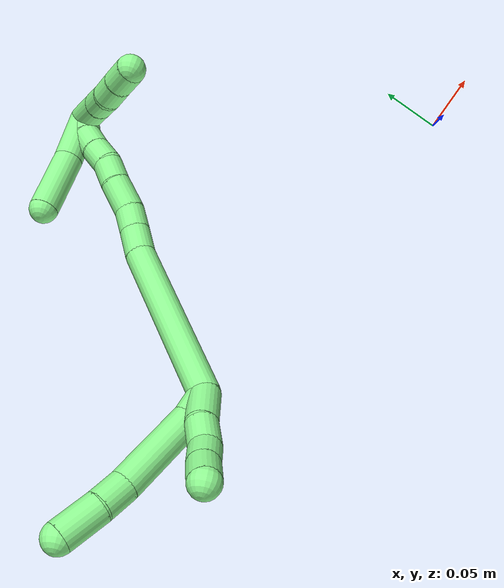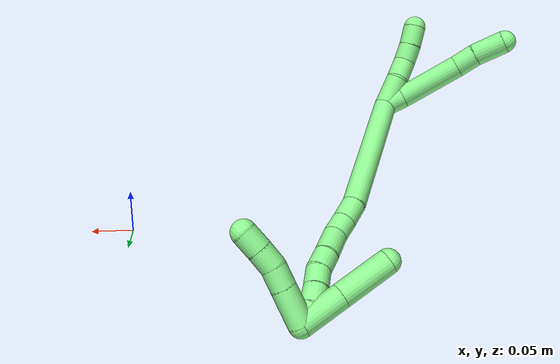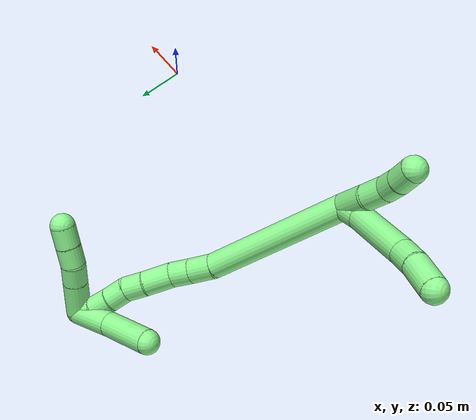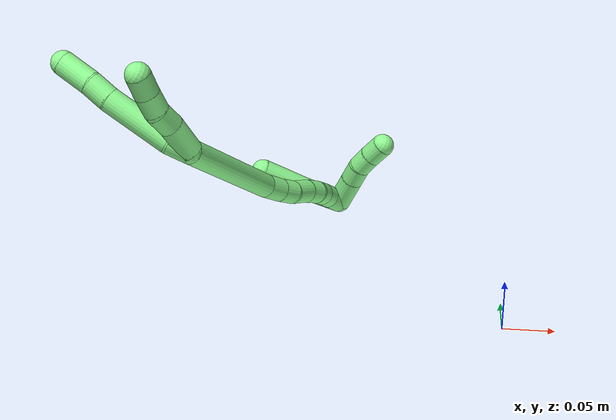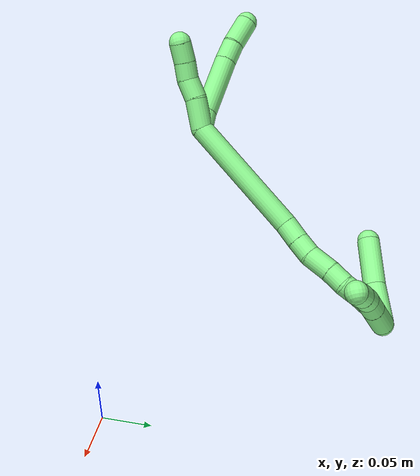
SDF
<sdf version="1.7">
 <world name="default">
  <model name="13">
   <static>0</static>
   <link name="13">
    <collision name="collision-cylinder-e_1_2_8">
     <pose>-0.000309 0.003994 0.010503 -0.363366 -0.027468 0.005046</pose>
     <geometry><cylinder><radius>0.0125</radius><length>0.022482</length></cylinder></geometry>
     <surface>
      <friction><ode><mu>1.16</mu><mu2>1.16</mu2><slip1>0</slip1><slip2>0</slip2></ode></friction>
      <contact><ode><kp>1e+06</kp><kd>1</kd><max_vel>0</max_vel><min_depth>0.001</min_depth></ode></contact>
     </surface>
    </collision>
    <visual name="visual-cylinder-e_1_2_8">
     <pose>-0.000309 0.003994 0.010503 -0.363366 -0.027468 0.005046</pose>
     <geometry><cylinder><radius>0.0125</radius><length>0.022482</length></cylinder></geometry>
     <material><ambient>0.564706 0.984314 0.572549 1</ambient></material>
    </visual>
    <collision name="collision-cylinder-e_2_8_9">
     <pose>0.00483 0.023265 0.051994 -0.458042 0.156395 -0.036528</pose>
     <geometry><cylinder><radius>0.0125</radius><length>0.069952</length></cylinder></geometry>
     <surface>
      <friction><ode><mu>1.16</mu><mu2>1.16</mu2><slip1>0</slip1><slip2>0</slip2></ode></friction>
      <contact><ode><kp>1e+06</kp><kd>1</kd><max_vel>0</max_vel><min_depth>0.001</min_depth></ode></contact>
     </surface>
    </collision>
    <visual name="visual-cylinder-e_2_8_9">
     <pose>0.00483 0.023265 0.051994 -0.458042 0.156395 -0.036528</pose>
     <geometry><cylinder><radius>0.0125</radius><length>0.069952</length></cylinder></geometry>
     <material><ambient>0.564706 0.984314 0.572549 1</ambient></material>
    </visual>
    <collision name="collision-cylinder-e_3_9_10">
     <pose>0.013359 0.044051 0.092952 -0.504781 0.264133 -0.068489</pose>
     <geometry><cylinder><radius>0.0125</radius><length>0.023599</length></cylinder></geometry>
     <surface>
      <friction><ode><mu>1.16</mu><mu2>1.16</mu2><slip1>0</slip1><slip2>0</slip2></ode></friction>
      <contact><ode><kp>1e+06</kp><kd>1</kd><max_vel>0</max_vel><min_depth>0.001</min_depth></ode></contact>
     </surface>
    </collision>
    <visual name="visual-cylinder-e_3_9_10">
     <pose>0.013359 0.044051 0.092952 -0.504781 0.264133 -0.068489</pose>
     <geometry><cylinder><radius>0.0125</radius><length>0.023599</length></cylinder></geometry>
     <material><ambient>0.564706 0.984314 0.572549 1</ambient></material>
    </visual>
    <collision name="collision-cylinder-e_4_10_6">
     <pose>0.019402 0.059315 0.116504 -0.622878 0.175358 -0.05658</pose>
     <geometry><cylinder><radius>0.0125</radius><length>0.033967</length></cylinder></geometry>
     <surface>
      <friction><ode><mu>1.16</mu><mu2>1.16</mu2><slip1>0</slip1><slip2>0</slip2></ode></friction>
      <contact><ode><kp>1e+06</kp><kd>1</kd><max_vel>0</max_vel><min_depth>0.001</min_depth></ode></contact>
     </surface>
    </collision>
    <visual name="visual-cylinder-e_4_10_6">
     <pose>0.019402 0.059315 0.116504 -0.622878 0.175358 -0.05658</pose>
     <geometry><cylinder><radius>0.0125</radius><length>0.033967</length></cylinder></geometry>
     <material><ambient>0.564706 0.984314 0.572549 1</ambient></material>
    </visual>
    <collision name="collision-cylinder-e_1_2_11">
     <pose>0.006453 -0.003257 0.015604 0.205772 0.384635 0.040205</pose>
     <geometry><cylinder><radius>0.0125</radius><length>0.034394</length></cylinder></geometry>
     <surface>
      <friction><ode><mu>1.16</mu><mu2>1.16</mu2><slip1>0</slip1><slip2>0</slip2></ode></friction>
      <contact><ode><kp>1e+06</kp><kd>1</kd><max_vel>0</max_vel><min_depth>0.001</min_depth></ode></contact>
     </surface>
    </collision>
    <visual name="visual-cylinder-e_1_2_11">
     <pose>0.006453 -0.003257 0.015604 0.205772 0.384635 0.040205</pose>
     <geometry><cylinder><radius>0.0125</radius><length>0.034394</length></cylinder></geometry>
     <material><ambient>0.564706 0.984314 0.572549 1</ambient></material>
    </visual>
    <collision name="collision-cylinder-e_2_11_12">
     <pose>0.015439 -0.010497 0.041886 0.357022 0.218737 0.03962</pose>
     <geometry><cylinder><radius>0.0125</radius><length>0.023348</length></cylinder></geometry>
     <surface>
      <friction><ode><mu>1.16</mu><mu2>1.16</mu2><slip1>0</slip1><slip2>0</slip2></ode></friction>
      <contact><ode><kp>1e+06</kp><kd>1</kd><max_vel>0</max_vel><min_depth>0.001</min_depth></ode></contact>
     </surface>
    </collision>
    <visual name="visual-cylinder-e_2_11_12">
     <pose>0.015439 -0.010497 0.041886 0.357022 0.218737 0.03962</pose>
     <geometry><cylinder><radius>0.0125</radius><length>0.023348</length></cylinder></geometry>
     <material><ambient>0.564706 0.984314 0.572549 1</ambient></material>
    </visual>
    <collision name="collision-cylinder-e_3_12_13">
     <pose>0.022932 -0.016531 0.061104 0.235788 0.51401 0.062238</pose>
     <geometry><cylinder><radius>0.0125</radius><length>0.020175</length></cylinder></geometry>
     <surface>
      <friction><ode><mu>1.16</mu><mu2>1.16</mu2><slip1>0</slip1><slip2>0</slip2></ode></friction>
      <contact><ode><kp>1e+06</kp><kd>1</kd><max_vel>0</max_vel><min_depth>0.001</min_depth></ode></contact>
     </surface>
    </collision>
    <visual name="visual-cylinder-e_3_12_13">
     <pose>0.022932 -0.016531 0.061104 0.235788 0.51401 0.062238</pose>
     <geometry><cylinder><radius>0.0125</radius><length>0.020175</length></cylinder></geometry>
     <material><ambient>0.564706 0.984314 0.572549 1</ambient></material>
    </visual>
    <collision name="collision-cylinder-e_4_13_5">
     <pose>0.033505 -0.021808 0.07859 0.346036 0.53331 0.095406</pose>
     <geometry><cylinder><radius>0.0125</radius><length>0.022083</length></cylinder></geometry>
     <surface>
      <friction><ode><mu>1.16</mu><mu2>1.16</mu2><slip1>0</slip1><slip2>0</slip2></ode></friction>
      <contact><ode><kp>1e+06</kp><kd>1</kd><max_vel>0</max_vel><min_depth>0.001</min_depth></ode></contact>
     </surface>
    </collision>
    <visual name="visual-cylinder-e_4_13_5">
     <pose>0.033505 -0.021808 0.07859 0.346036 0.53331 0.095406</pose>
     <geometry><cylinder><radius>0.0125</radius><length>0.022083</length></cylinder></geometry>
     <material><ambient>0.564706 0.984314 0.572549 1</ambient></material>
    </visual>
    <collision name="collision-cylinder-e_1_2_14">
     <pose>0.003231 0.039331 -0.060508 -2.56521 0.044743 -0.150671</pose>
     <geometry><cylinder><radius>0.0125</radius><length>0.144479</length></cylinder></geometry>
     <surface>
      <friction><ode><mu>1.16</mu><mu2>1.16</mu2><slip1>0</slip1><slip2>0</slip2></ode></friction>
      <contact><ode><kp>1e+06</kp><kd>1</kd><max_vel>0</max_vel><min_depth>0.001</min_depth></ode></contact>
     </surface>
    </collision>
    <visual name="visual-cylinder-e_1_2_14">
     <pose>0.003231 0.039331 -0.060508 -2.56521 0.044743 -0.150671</pose>
     <geometry><cylinder><radius>0.0125</radius><length>0.144479</length></cylinder></geometry>
     <material><ambient>0.564706 0.984314 0.572549 1</ambient></material>
    </visual>
    <collision name="collision-cylinder-e_2_14_15">
     <pose>0.008166 0.083503 -0.13193 -2.72407 0.141724 -0.646605</pose>
     <geometry><cylinder><radius>0.0125</radius><length>0.024123</length></cylinder></geometry>
     <surface>
      <friction><ode><mu>1.16</mu><mu2>1.16</mu2><slip1>0</slip1><slip2>0</slip2></ode></friction>
      <contact><ode><kp>1e+06</kp><kd>1</kd><max_vel>0</max_vel><min_depth>0.001</min_depth></ode></contact>
     </surface>
    </collision>
    <visual name="visual-cylinder-e_2_14_15">
     <pose>0.008166 0.083503 -0.13193 -2.72407 0.141724 -0.646605</pose>
     <geometry><cylinder><radius>0.0125</radius><length>0.024123</length></cylinder></geometry>
     <material><ambient>0.564706 0.984314 0.572549 1</ambient></material>
    </visual>
    <collision name="collision-cylinder-e_3_15_16">
     <pose>0.012026 0.092598 -0.152226 -2.71596 0.206345 -0.893671</pose>
     <geometry><cylinder><radius>0.0125</radius><length>0.021047</length></cylinder></geometry>
     <surface>
      <friction><ode><mu>1.16</mu><mu2>1.16</mu2><slip1>0</slip1><slip2>0</slip2></ode></friction>
      <contact><ode><kp>1e+06</kp><kd>1</kd><max_vel>0</max_vel><min_depth>0.001</min_depth></ode></contact>
     </surface>
    </collision>
    <visual name="visual-cylinder-e_3_15_16">
     <pose>0.012026 0.092598 -0.152226 -2.71596 0.206345 -0.893671</pose>
     <geometry><cylinder><radius>0.0125</radius><length>0.021047</length></cylinder></geometry>
     <material><ambient>0.564706 0.984314 0.572549 1</ambient></material>
    </visual>
    <collision name="collision-cylinder-e_4_16_17">
     <pose>0.018625 0.105058 -0.172802 -2.50897 0.309773 -0.890226</pose>
     <geometry><cylinder><radius>0.0125</radius><length>0.029149</length></cylinder></geometry>
     <surface>
      <friction><ode><mu>1.16</mu><mu2>1.16</mu2><slip1>0</slip1><slip2>0</slip2></ode></friction>
      <contact><ode><kp>1e+06</kp><kd>1</kd><max_vel>0</max_vel><min_depth>0.001</min_depth></ode></contact>
     </surface>
    </collision>
    <visual name="visual-cylinder-e_4_16_17">
     <pose>0.018625 0.105058 -0.172802 -2.50897 0.309773 -0.890226</pose>
     <geometry><cylinder><radius>0.0125</radius><length>0.029149</length></cylinder></geometry>
     <material><ambient>0.564706 0.984314 0.572549 1</ambient></material>
    </visual>
    <collision name="collision-cylinder-e_5_17_18">
     <pose>0.025547 0.118501 -0.192666 -2.59835 0.240088 -0.817449</pose>
     <geometry><cylinder><radius>0.0125</radius><length>0.020855</length></cylinder></geometry>
     <surface>
      <friction><ode><mu>1.16</mu><mu2>1.16</mu2><slip1>0</slip1><slip2>0</slip2></ode></friction>
      <contact><ode><kp>1e+06</kp><kd>1</kd><max_vel>0</max_vel><min_depth>0.001</min_depth></ode></contact>
     </surface>
    </collision>
    <visual name="visual-cylinder-e_5_17_18">
     <pose>0.025547 0.118501 -0.192666 -2.59835 0.240088 -0.817449</pose>
     <geometry><cylinder><radius>0.0125</radius><length>0.020855</length></cylinder></geometry>
     <material><ambient>0.564706 0.984314 0.572549 1</ambient></material>
    </visual>
    <collision name="collision-cylinder-e_6_18_19">
     <pose>0.02901 0.130777 -0.208479 -2.36334 0.097691 -0.237321</pose>
     <geometry><cylinder><radius>0.0125</radius><length>0.020154</length></cylinder></geometry>
     <surface>
      <friction><ode><mu>1.16</mu><mu2>1.16</mu2><slip1>0</slip1><slip2>0</slip2></ode></friction>
      <contact><ode><kp>1e+06</kp><kd>1</kd><max_vel>0</max_vel><min_depth>0.001</min_depth></ode></contact>
     </surface>
    </collision>
    <visual name="visual-cylinder-e_6_18_19">
     <pose>0.02901 0.130777 -0.208479 -2.36334 0.097691 -0.237321</pose>
     <geometry><cylinder><radius>0.0125</radius><length>0.020154</length></cylinder></geometry>
     <material><ambient>0.564706 0.984314 0.572549 1</ambient></material>
    </visual>
    <collision name="collision-cylinder-e_7_19_20">
     <pose>0.030662 0.144206 -0.223394 -2.45373 0.066407 -0.184948</pose>
     <geometry><cylinder><radius>0.0125</radius><length>0.020166</length></cylinder></geometry>
     <surface>
      <friction><ode><mu>1.16</mu><mu2>1.16</mu2><slip1>0</slip1><slip2>0</slip2></ode></friction>
      <contact><ode><kp>1e+06</kp><kd>1</kd><max_vel>0</max_vel><min_depth>0.001</min_depth></ode></contact>
     </surface>
    </collision>
    <visual name="visual-cylinder-e_7_19_20">
     <pose>0.030662 0.144206 -0.223394 -2.45373 0.066407 -0.184948</pose>
     <geometry><cylinder><radius>0.0125</radius><length>0.020166</length></cylinder></geometry>
     <material><ambient>0.564706 0.984314 0.572549 1</ambient></material>
    </visual>
    <collision name="collision-cylinder-e_8_20_1">
     <pose>0.032052 0.154137 -0.240505 -2.7789 0.072054 -0.388188</pose>
     <geometry><cylinder><radius>0.0125</radius><length>0.020027</length></cylinder></geometry>
     <surface>
      <friction><ode><mu>1.16</mu><mu2>1.16</mu2><slip1>0</slip1><slip2>0</slip2></ode></friction>
      <contact><ode><kp>1e+06</kp><kd>1</kd><max_vel>0</max_vel><min_depth>0.001</min_depth></ode></contact>
     </surface>
    </collision>
    <visual name="visual-cylinder-e_8_20_1">
     <pose>0.032052 0.154137 -0.240505 -2.7789 0.072054 -0.388188</pose>
     <geometry><cylinder><radius>0.0125</radius><length>0.020027</length></cylinder></geometry>
     <material><ambient>0.564706 0.984314 0.572549 1</ambient></material>
    </visual>
    <collision name="collision-cylinder-e_1_1_21">
     <pose>0.046436 0.14586 -0.244817 1.16874 0.816271 0.557153</pose>
     <geometry><cylinder><radius>0.0125</radius><length>0.037505</length></cylinder></geometry>
     <surface>
      <friction><ode><mu>1.16</mu><mu2>1.16</mu2><slip1>0</slip1><slip2>0</slip2></ode></friction>
      <contact><ode><kp>1e+06</kp><kd>1</kd><max_vel>0</max_vel><min_depth>0.001</min_depth></ode></contact>
     </surface>
    </collision>
    <visual name="visual-cylinder-e_1_1_21">
     <pose>0.046436 0.14586 -0.244817 1.16874 0.816271 0.557153</pose>
     <geometry><cylinder><radius>0.0125</radius><length>0.037505</length></cylinder></geometry>
     <material><ambient>0.564706 0.984314 0.572549 1</ambient></material>
    </visual>
    <collision name="collision-cylinder-e_2_21_22">
     <pose>0.067778 0.12738 -0.236968 1.16991 0.815311 0.557131</pose>
     <geometry><cylinder><radius>0.0125</radius><length>0.021098</length></cylinder></geometry>
     <surface>
      <friction><ode><mu>1.16</mu><mu2>1.16</mu2><slip1>0</slip1><slip2>0</slip2></ode></friction>
      <contact><ode><kp>1e+06</kp><kd>1</kd><max_vel>0</max_vel><min_depth>0.001</min_depth></ode></contact>
     </surface>
    </collision>
    <visual name="visual-cylinder-e_2_21_22">
     <pose>0.067778 0.12738 -0.236968 1.16991 0.815311 0.557131</pose>
     <geometry><cylinder><radius>0.0125</radius><length>0.021098</length></cylinder></geometry>
     <material><ambient>0.564706 0.984314 0.572549 1</ambient></material>
    </visual>
    <collision name="collision-cylinder-e_3_22_23">
     <pose>0.083049 0.11398 -0.233843 1.52597 0.844228 0.811207</pose>
     <geometry><cylinder><radius>0.0125</radius><length>0.020315</length></cylinder></geometry>
     <surface>
      <friction><ode><mu>1.16</mu><mu2>1.16</mu2><slip1>0</slip1><slip2>0</slip2></ode></friction>
      <contact><ode><kp>1e+06</kp><kd>1</kd><max_vel>0</max_vel><min_depth>0.001</min_depth></ode></contact>
     </surface>
    </collision>
    <visual name="visual-cylinder-e_3_22_23">
     <pose>0.083049 0.11398 -0.233843 1.52597 0.844228 0.811207</pose>
     <geometry><cylinder><radius>0.0125</radius><length>0.020315</length></cylinder></geometry>
     <material><ambient>0.564706 0.984314 0.572549 1</ambient></material>
    </visual>
    <collision name="collision-cylinder-e_4_23_4">
     <pose>0.098311 0.100008 -0.233579 1.57605 0.814877 0.818711</pose>
     <geometry><cylinder><radius>0.0125</radius><length>0.021081</length></cylinder></geometry>
     <surface>
      <friction><ode><mu>1.16</mu><mu2>1.16</mu2><slip1>0</slip1><slip2>0</slip2></ode></friction>
      <contact><ode><kp>1e+06</kp><kd>1</kd><max_vel>0</max_vel><min_depth>0.001</min_depth></ode></contact>
     </surface>
    </collision>
    <visual name="visual-cylinder-e_4_23_4">
     <pose>0.098311 0.100008 -0.233579 1.57605 0.814877 0.818711</pose>
     <geometry><cylinder><radius>0.0125</radius><length>0.021081</length></cylinder></geometry>
     <material><ambient>0.564706 0.984314 0.572549 1</ambient></material>
    </visual>
    <collision name="collision-cylinder-e_1_1_24">
     <pose>0.030053 0.159527 -0.227442 -0.082263 -0.120402 0.004961</pose>
     <geometry><cylinder><radius>0.0125</radius><length>0.045281</length></cylinder></geometry>
     <surface>
      <friction><ode><mu>1.16</mu><mu2>1.16</mu2><slip1>0</slip1><slip2>0</slip2></ode></friction>
      <contact><ode><kp>1e+06</kp><kd>1</kd><max_vel>0</max_vel><min_depth>0.001</min_depth></ode></contact>
     </surface>
    </collision>
    <visual name="visual-cylinder-e_1_1_24">
     <pose>0.030053 0.159527 -0.227442 -0.082263 -0.120402 0.004961</pose>
     <geometry><cylinder><radius>0.0125</radius><length>0.045281</length></cylinder></geometry>
     <material><ambient>0.564706 0.984314 0.572549 1</ambient></material>
    </visual>
    <collision name="collision-cylinder-e_2_24_3">
     <pose>0.025681 0.164677 -0.177933 -0.12126 -0.060458 0.003671</pose>
     <geometry><cylinder><radius>0.0125</radius><length>0.054719</length></cylinder></geometry>
     <surface>
      <friction><ode><mu>1.16</mu><mu2>1.16</mu2><slip1>0</slip1><slip2>0</slip2></ode></friction>
      <contact><ode><kp>1e+06</kp><kd>1</kd><max_vel>0</max_vel><min_depth>0.001</min_depth></ode></contact>
     </surface>
    </collision>
    <visual name="visual-cylinder-e_2_24_3">
     <pose>0.025681 0.164677 -0.177933 -0.12126 -0.060458 0.003671</pose>
     <geometry><cylinder><radius>0.0125</radius><length>0.054719</length></cylinder></geometry>
     <material><ambient>0.564706 0.984314 0.572549 1</ambient></material>
    </visual>
    <collision name="collision-sphere-3">
     <pose>0.024027 0.167981 -0.150824 0 -0 0</pose>
     <geometry><sphere><radius>0.0125</radius></sphere></geometry>
     <surface>
      <friction><ode><mu>1.16</mu><mu2>1.16</mu2><slip1>0</slip1><slip2>0</slip2></ode></friction>
      <contact><ode><kp>1e+06</kp><kd>1</kd><max_vel>0</max_vel><min_depth>0.001</min_depth></ode></contact>
     </surface>
    </collision>
    <visual name="visual-sphere-3">
     <pose>0.024027 0.167981 -0.150824 0 -0 0</pose>
     <geometry><sphere><radius>0.0125</radius></sphere></geometry>
     <material><ambient>0.564706 0.984314 0.572549 1</ambient></material>
    </visual>
    <collision name="collision-sphere-24">
     <pose>0.027334 0.161374 -0.205042 0 -0 0</pose>
     <geometry><sphere><radius>0.0125</radius></sphere></geometry>
     <surface>
      <friction><ode><mu>1.16</mu><mu2>1.16</mu2><slip1>0</slip1><slip2>0</slip2></ode></friction>
      <contact><ode><kp>1e+06</kp><kd>1</kd><max_vel>0</max_vel><min_depth>0.001</min_depth></ode></contact>
     </surface>
    </collision>
    <visual name="visual-sphere-24">
     <pose>0.027334 0.161374 -0.205042 0 -0 0</pose>
     <geometry><sphere><radius>0.0125</radius></sphere></geometry>
     <material><ambient>0.564706 0.984314 0.572549 1</ambient></material>
    </visual>
    <collision name="collision-sphere-4">
     <pose>0.105981 0.092778 -0.233617 0 -0 0</pose>
     <geometry><sphere><radius>0.0125</radius></sphere></geometry>
     <surface>
      <friction><ode><mu>1.16</mu><mu2>1.16</mu2><slip1>0</slip1><slip2>0</slip2></ode></friction>
      <contact><ode><kp>1e+06</kp><kd>1</kd><max_vel>0</max_vel><min_depth>0.001</min_depth></ode></contact>
     </surface>
    </collision>
    <visual name="visual-sphere-4">
     <pose>0.105981 0.092778 -0.233617 0 -0 0</pose>
     <geometry><sphere><radius>0.0125</radius></sphere></geometry>
     <material><ambient>0.564706 0.984314 0.572549 1</ambient></material>
    </visual>
    <collision name="collision-sphere-23">
     <pose>0.090642 0.107239 -0.233541 0 -0 0</pose>
     <geometry><sphere><radius>0.0125</radius></sphere></geometry>
     <surface>
      <friction><ode><mu>1.16</mu><mu2>1.16</mu2><slip1>0</slip1><slip2>0</slip2></ode></friction>
      <contact><ode><kp>1e+06</kp><kd>1</kd><max_vel>0</max_vel><min_depth>0.001</min_depth></ode></contact>
     </surface>
    </collision>
    <visual name="visual-sphere-23">
     <pose>0.090642 0.107239 -0.233541 0 -0 0</pose>
     <geometry><sphere><radius>0.0125</radius></sphere></geometry>
     <material><ambient>0.564706 0.984314 0.572549 1</ambient></material>
    </visual>
    <collision name="collision-sphere-22">
     <pose>0.075457 0.120721 -0.234146 0 -0 0</pose>
     <geometry><sphere><radius>0.0125</radius></sphere></geometry>
     <surface>
      <friction><ode><mu>1.16</mu><mu2>1.16</mu2><slip1>0</slip1><slip2>0</slip2></ode></friction>
      <contact><ode><kp>1e+06</kp><kd>1</kd><max_vel>0</max_vel><min_depth>0.001</min_depth></ode></contact>
     </surface>
    </collision>
    <visual name="visual-sphere-22">
     <pose>0.075457 0.120721 -0.234146 0 -0 0</pose>
     <geometry><sphere><radius>0.0125</radius></sphere></geometry>
     <material><ambient>0.564706 0.984314 0.572549 1</ambient></material>
    </visual>
    <collision name="collision-sphere-21">
     <pose>0.060099 0.13404 -0.239791 0 -0 0</pose>
     <geometry><sphere><radius>0.0125</radius></sphere></geometry>
     <surface>
      <friction><ode><mu>1.16</mu><mu2>1.16</mu2><slip1>0</slip1><slip2>0</slip2></ode></friction>
      <contact><ode><kp>1e+06</kp><kd>1</kd><max_vel>0</max_vel><min_depth>0.001</min_depth></ode></contact>
     </surface>
    </collision>
    <visual name="visual-sphere-21">
     <pose>0.060099 0.13404 -0.239791 0 -0 0</pose>
     <geometry><sphere><radius>0.0125</radius></sphere></geometry>
     <material><ambient>0.564706 0.984314 0.572549 1</ambient></material>
    </visual>
    <collision name="collision-sphere-1">
     <pose>0.032772 0.15768 -0.249843 0 -0 0</pose>
     <geometry><sphere><radius>0.0125</radius></sphere></geometry>
     <surface>
      <friction><ode><mu>1.16</mu><mu2>1.16</mu2><slip1>0</slip1><slip2>0</slip2></ode></friction>
      <contact><ode><kp>1e+06</kp><kd>1</kd><max_vel>0</max_vel><min_depth>0.001</min_depth></ode></contact>
     </surface>
    </collision>
    <visual name="visual-sphere-1">
     <pose>0.032772 0.15768 -0.249843 0 -0 0</pose>
     <geometry><sphere><radius>0.0125</radius></sphere></geometry>
     <material><ambient>0.564706 0.984314 0.572549 1</ambient></material>
    </visual>
    <collision name="collision-sphere-11">
     <pose>0.012905 -0.006514 0.031209 0 -0 0</pose>
     <geometry><sphere><radius>0.0125</radius></sphere></geometry>
     <surface>
      <friction><ode><mu>1.16</mu><mu2>1.16</mu2><slip1>0</slip1><slip2>0</slip2></ode></friction>
      <contact><ode><kp>1e+06</kp><kd>1</kd><max_vel>0</max_vel><min_depth>0.001</min_depth></ode></contact>
     </surface>
    </collision>
    <visual name="visual-sphere-11">
     <pose>0.012905 -0.006514 0.031209 0 -0 0</pose>
     <geometry><sphere><radius>0.0125</radius></sphere></geometry>
     <material><ambient>0.564706 0.984314 0.572549 1</ambient></material>
    </visual>
    <collision name="collision-sphere-6">
     <pose>0.022365 0.069071 0.130086 0 -0 0</pose>
     <geometry><sphere><radius>0.0125</radius></sphere></geometry>
     <surface>
      <friction><ode><mu>1.16</mu><mu2>1.16</mu2><slip1>0</slip1><slip2>0</slip2></ode></friction>
      <contact><ode><kp>1e+06</kp><kd>1</kd><max_vel>0</max_vel><min_depth>0.001</min_depth></ode></contact>
     </surface>
    </collision>
    <visual name="visual-sphere-6">
     <pose>0.022365 0.069071 0.130086 0 -0 0</pose>
     <geometry><sphere><radius>0.0125</radius></sphere></geometry>
     <material><ambient>0.564706 0.984314 0.572549 1</ambient></material>
    </visual>
    <collision name="collision-sphere-10">
     <pose>0.016439 0.049559 0.102921 0 -0 0</pose>
     <geometry><sphere><radius>0.0125</radius></sphere></geometry>
     <surface>
      <friction><ode><mu>1.16</mu><mu2>1.16</mu2><slip1>0</slip1><slip2>0</slip2></ode></friction>
      <contact><ode><kp>1e+06</kp><kd>1</kd><max_vel>0</max_vel><min_depth>0.001</min_depth></ode></contact>
     </surface>
    </collision>
    <visual name="visual-sphere-10">
     <pose>0.016439 0.049559 0.102921 0 -0 0</pose>
     <geometry><sphere><radius>0.0125</radius></sphere></geometry>
     <material><ambient>0.564706 0.984314 0.572549 1</ambient></material>
    </visual>
    <collision name="collision-sphere-9">
     <pose>0.010278 0.038542 0.082982 0 -0 0</pose>
     <geometry><sphere><radius>0.0125</radius></sphere></geometry>
     <surface>
      <friction><ode><mu>1.16</mu><mu2>1.16</mu2><slip1>0</slip1><slip2>0</slip2></ode></friction>
      <contact><ode><kp>1e+06</kp><kd>1</kd><max_vel>0</max_vel><min_depth>0.001</min_depth></ode></contact>
     </surface>
    </collision>
    <visual name="visual-sphere-9">
     <pose>0.010278 0.038542 0.082982 0 -0 0</pose>
     <geometry><sphere><radius>0.0125</radius></sphere></geometry>
     <material><ambient>0.564706 0.984314 0.572549 1</ambient></material>
    </visual>
    <collision name="collision-sphere-2">
     <geometry><sphere><radius>0.0125</radius></sphere></geometry>
     <surface>
      <friction><ode><mu>1.16</mu><mu2>1.16</mu2><slip1>0</slip1><slip2>0</slip2></ode></friction>
      <contact><ode><kp>1e+06</kp><kd>1</kd><max_vel>0</max_vel><min_depth>0.001</min_depth></ode></contact>
     </surface>
    </collision>
    <visual name="visual-sphere-2">
     <geometry><sphere><radius>0.0125</radius></sphere></geometry>
     <material><ambient>0.564706 0.984314 0.572549 1</ambient></material>
    </visual>
    <collision name="collision-sphere-19">
     <pose>0.029992 0.137818 -0.215621 0 -0 0</pose>
     <geometry><sphere><radius>0.0125</radius></sphere></geometry>
     <surface>
      <friction><ode><mu>1.16</mu><mu2>1.16</mu2><slip1>0</slip1><slip2>0</slip2></ode></friction>
      <contact><ode><kp>1e+06</kp><kd>1</kd><max_vel>0</max_vel><min_depth>0.001</min_depth></ode></contact>
     </surface>
    </collision>
    <visual name="visual-sphere-19">
     <pose>0.029992 0.137818 -0.215621 0 -0 0</pose>
     <geometry><sphere><radius>0.0125</radius></sphere></geometry>
     <material><ambient>0.564706 0.984314 0.572549 1</ambient></material>
    </visual>
    <collision name="collision-sphere-8">
     <pose>-0.000617 0.007988 0.021006 0 -0 0</pose>
     <geometry><sphere><radius>0.0125</radius></sphere></geometry>
     <surface>
      <friction><ode><mu>1.16</mu><mu2>1.16</mu2><slip1>0</slip1><slip2>0</slip2></ode></friction>
      <contact><ode><kp>1e+06</kp><kd>1</kd><max_vel>0</max_vel><min_depth>0.001</min_depth></ode></contact>
     </surface>
    </collision>
    <visual name="visual-sphere-8">
     <pose>-0.000617 0.007988 0.021006 0 -0 0</pose>
     <geometry><sphere><radius>0.0125</radius></sphere></geometry>
     <material><ambient>0.564706 0.984314 0.572549 1</ambient></material>
    </visual>
    <collision name="collision-sphere-12">
     <pose>0.017972 -0.014479 0.052563 0 -0 0</pose>
     <geometry><sphere><radius>0.0125</radius></sphere></geometry>
     <surface>
      <friction><ode><mu>1.16</mu><mu2>1.16</mu2><slip1>0</slip1><slip2>0</slip2></ode></friction>
      <contact><ode><kp>1e+06</kp><kd>1</kd><max_vel>0</max_vel><min_depth>0.001</min_depth></ode></contact>
     </surface>
    </collision>
    <visual name="visual-sphere-12">
     <pose>0.017972 -0.014479 0.052563 0 -0 0</pose>
     <geometry><sphere><radius>0.0125</radius></sphere></geometry>
     <material><ambient>0.564706 0.984314 0.572549 1</ambient></material>
    </visual>
    <collision name="collision-sphere-13">
     <pose>0.027892 -0.018584 0.069645 0 -0 0</pose>
     <geometry><sphere><radius>0.0125</radius></sphere></geometry>
     <surface>
      <friction><ode><mu>1.16</mu><mu2>1.16</mu2><slip1>0</slip1><slip2>0</slip2></ode></friction>
      <contact><ode><kp>1e+06</kp><kd>1</kd><max_vel>0</max_vel><min_depth>0.001</min_depth></ode></contact>
     </surface>
    </collision>
    <visual name="visual-sphere-13">
     <pose>0.027892 -0.018584 0.069645 0 -0 0</pose>
     <geometry><sphere><radius>0.0125</radius></sphere></geometry>
     <material><ambient>0.564706 0.984314 0.572549 1</ambient></material>
    </visual>
    <collision name="collision-sphere-5">
     <pose>0.039118 -0.025033 0.087534 0 -0 0</pose>
     <geometry><sphere><radius>0.0125</radius></sphere></geometry>
     <surface>
      <friction><ode><mu>1.16</mu><mu2>1.16</mu2><slip1>0</slip1><slip2>0</slip2></ode></friction>
      <contact><ode><kp>1e+06</kp><kd>1</kd><max_vel>0</max_vel><min_depth>0.001</min_depth></ode></contact>
     </surface>
    </collision>
    <visual name="visual-sphere-5">
     <pose>0.039118 -0.025033 0.087534 0 -0 0</pose>
     <geometry><sphere><radius>0.0125</radius></sphere></geometry>
     <material><ambient>0.564706 0.984314 0.572549 1</ambient></material>
    </visual>
    <collision name="collision-sphere-14">
     <pose>0.006462 0.078662 -0.121015 0 -0 0</pose>
     <geometry><sphere><radius>0.0125</radius></sphere></geometry>
     <surface>
      <friction><ode><mu>1.16</mu><mu2>1.16</mu2><slip1>0</slip1><slip2>0</slip2></ode></friction>
      <contact><ode><kp>1e+06</kp><kd>1</kd><max_vel>0</max_vel><min_depth>0.001</min_depth></ode></contact>
     </surface>
    </collision>
    <visual name="visual-sphere-14">
     <pose>0.006462 0.078662 -0.121015 0 -0 0</pose>
     <geometry><sphere><radius>0.0125</radius></sphere></geometry>
     <material><ambient>0.564706 0.984314 0.572549 1</ambient></material>
    </visual>
    <collision name="collision-sphere-15">
     <pose>0.00987 0.088345 -0.142845 0 -0 0</pose>
     <geometry><sphere><radius>0.0125</radius></sphere></geometry>
     <surface>
      <friction><ode><mu>1.16</mu><mu2>1.16</mu2><slip1>0</slip1><slip2>0</slip2></ode></friction>
      <contact><ode><kp>1e+06</kp><kd>1</kd><max_vel>0</max_vel><min_depth>0.001</min_depth></ode></contact>
     </surface>
    </collision>
    <visual name="visual-sphere-15">
     <pose>0.00987 0.088345 -0.142845 0 -0 0</pose>
     <geometry><sphere><radius>0.0125</radius></sphere></geometry>
     <material><ambient>0.564706 0.984314 0.572549 1</ambient></material>
    </visual>
    <collision name="collision-sphere-16">
     <pose>0.014182 0.096851 -0.161607 0 -0 0</pose>
     <geometry><sphere><radius>0.0125</radius></sphere></geometry>
     <surface>
      <friction><ode><mu>1.16</mu><mu2>1.16</mu2><slip1>0</slip1><slip2>0</slip2></ode></friction>
      <contact><ode><kp>1e+06</kp><kd>1</kd><max_vel>0</max_vel><min_depth>0.001</min_depth></ode></contact>
     </surface>
    </collision>
    <visual name="visual-sphere-16">
     <pose>0.014182 0.096851 -0.161607 0 -0 0</pose>
     <geometry><sphere><radius>0.0125</radius></sphere></geometry>
     <material><ambient>0.564706 0.984314 0.572549 1</ambient></material>
    </visual>
    <collision name="collision-sphere-17">
     <pose>0.023068 0.113265 -0.183996 0 -0 0</pose>
     <geometry><sphere><radius>0.0125</radius></sphere></geometry>
     <surface>
      <friction><ode><mu>1.16</mu><mu2>1.16</mu2><slip1>0</slip1><slip2>0</slip2></ode></friction>
      <contact><ode><kp>1e+06</kp><kd>1</kd><max_vel>0</max_vel><min_depth>0.001</min_depth></ode></contact>
     </surface>
    </collision>
    <visual name="visual-sphere-17">
     <pose>0.023068 0.113265 -0.183996 0 -0 0</pose>
     <geometry><sphere><radius>0.0125</radius></sphere></geometry>
     <material><ambient>0.564706 0.984314 0.572549 1</ambient></material>
    </visual>
    <collision name="collision-sphere-18">
     <pose>0.028027 0.123736 -0.201337 0 -0 0</pose>
     <geometry><sphere><radius>0.0125</radius></sphere></geometry>
     <surface>
      <friction><ode><mu>1.16</mu><mu2>1.16</mu2><slip1>0</slip1><slip2>0</slip2></ode></friction>
      <contact><ode><kp>1e+06</kp><kd>1</kd><max_vel>0</max_vel><min_depth>0.001</min_depth></ode></contact>
     </surface>
    </collision>
    <visual name="visual-sphere-18">
     <pose>0.028027 0.123736 -0.201337 0 -0 0</pose>
     <geometry><sphere><radius>0.0125</radius></sphere></geometry>
     <material><ambient>0.564706 0.984314 0.572549 1</ambient></material>
    </visual>
    <collision name="collision-sphere-20">
     <pose>0.031331 0.150593 -0.231167 0 -0 0</pose>
     <geometry><sphere><radius>0.0125</radius></sphere></geometry>
     <surface>
      <friction><ode><mu>1.16</mu><mu2>1.16</mu2><slip1>0</slip1><slip2>0</slip2></ode></friction>
      <contact><ode><kp>1e+06</kp><kd>1</kd><max_vel>0</max_vel><min_depth>0.001</min_depth></ode></contact>
     </surface>
    </collision>
    <visual name="visual-sphere-20">
     <pose>0.031331 0.150593 -0.231167 0 -0 0</pose>
     <geometry><sphere><radius>0.0125</radius></sphere></geometry>
     <material><ambient>0.564706 0.984314 0.572549 1</ambient></material>
    </visual>
    <inertial>
     <pose>0.022167 0.074968 -0.089455 0 -0 0</pose>
     <mass>0.75</mass>
     <inertia>
      <ixx>0.000313</ixx>
      <ixy>0</ixy>
      <ixz>0</ixz>
      <iyy>-0.000174</iyy>
      <iyz>0</iyz>
      <izz>-0.000181</izz>
     </inertia>
    </inertial>
   </link>
   <pose>-0.302403 0.029265 0.157467 -0.358684 -0.937395 0.840217</pose>
  </model>
 </world>
</sdf>
